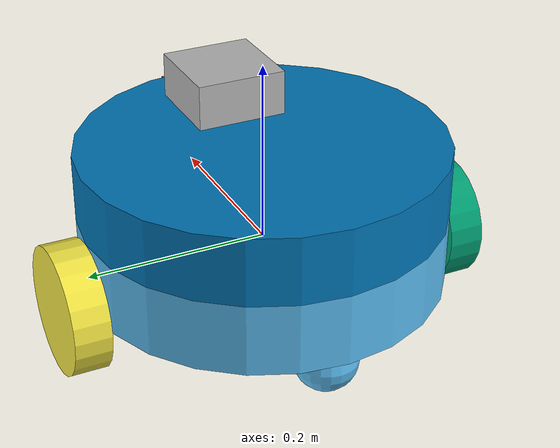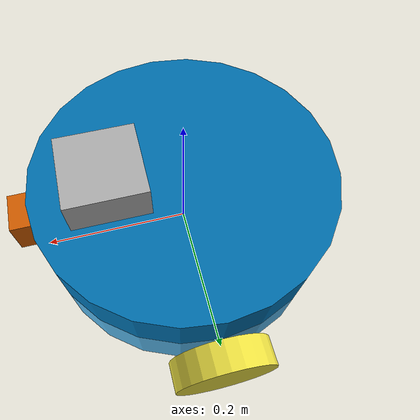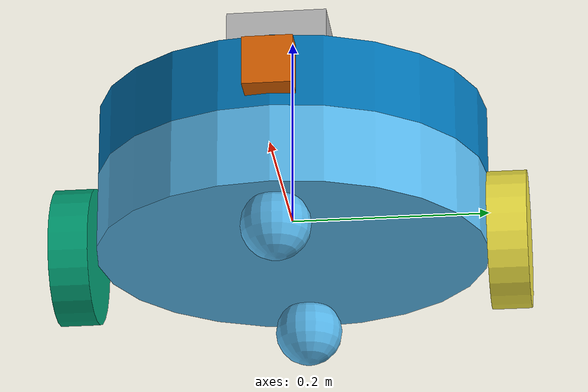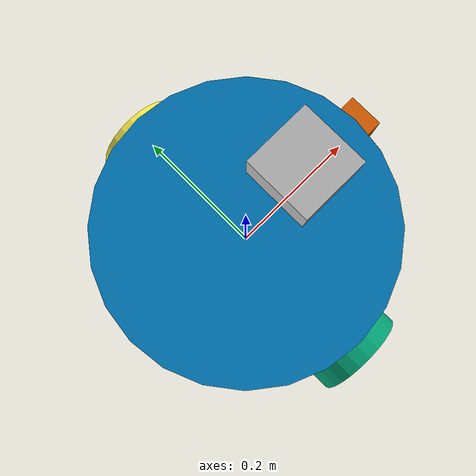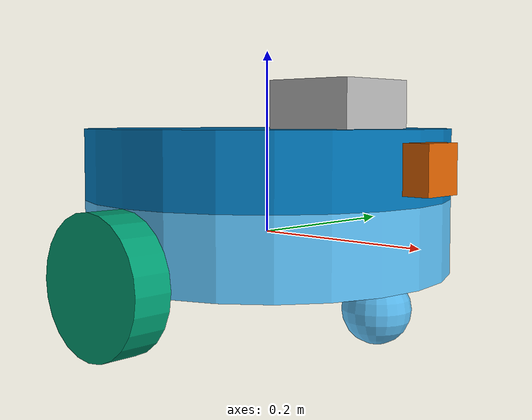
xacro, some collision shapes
<?xml version='1.0'?>

<robot name="my_robot" xmlns:xacro="http://www.ros.org/wiki/xacro">

	<xacro:include filename="$(find my_robot)/urdf/my_robot.gazebo" />

	<!-- parameters -->

    	<xacro:property name="base_radius" value="0.2" />
	<xacro:property name="base_height" value="0.08" />
	<xacro:property name="base_mass" value="10.0" />

	<xacro:property name="wheel_radius" value="0.07" />
	<xacro:property name="wheel_length" value="0.04" />
	<xacro:property name="wheel_mass" value="3.0" />
	<xacro:property name="z_offset_between_centers" value="${wheel_radius - base_height/2}" />

	<xacro:property name="camera_edge_length" value="0.05" />
	<xacro:property name="camera_mass" value="0.1" />

	<xacro:property name="lidar_edge_length" value="0.1" />
	<xacro:property name="lidar_mass" value="1e-5" />

	<xacro:property name="sensors_base_heigth" value="${1.5*camera_edge_length}" />
	<xacro:property name="sensors_base_mass" value="1.0" />
	<xacro:property name="sensors_base_offset_z" value="${base_height/2 + sensors_base_heigth/2}" />

	<xacro:property name="pi" value="3.1415926535897931" />

	<!-- macro definitions -->
	<xacro:macro name="cylinder_inertial" params="mass radius length">
		<inertial>
		    <mass value="${mass}" />
		    <inertia
			ixx="${1/12*mass*(3*radius*radius + length*length)}" ixy="0" ixz="0"
			iyy="${1/12*mass*(3*radius*radius + length*length)}" iyz="0"
			izz="${1/2*mass*radius*radius}"
		    />
		</inertial>
	</xacro:macro>

	<xacro:macro name="cube_inertial" params="mass edge_length">
		<inertial>
		    <mass value="${mass}" />
		    <inertia
			ixx="${1/6*mass*edge_length*edge_length}" ixy="0" ixz="0"
			iyy="${1/6*mass*edge_length*edge_length}" iyz="0"
			izz="${1/6*mass*edge_length*edge_length}"
		    />
		</inertial>
	</xacro:macro>

	<!-- robot -->

	<link name="robot_footprint"></link>

	<joint name="robot_footprint_joint" type="fixed">
		<origin xyz="0 0 0" rpy="0 0 0"/>
		<parent link="robot_footprint"/>
		<child link="base"/>
	</joint>

	<!-- Cylindrical base with two casters for stability along the y axis-->
	<link name="base">
		<pose>0 0 ${wheel_radius + z_offset_between_centers} 0 0 0</pose>

		<xacro:cylinder_inertial
		    mass="${base_mass}" radius="${base_radius}" length="${base_height}"
		/>

		<collision name="base_collision">
		    	<origin xyz="0 0 0" rpy="0 0 0"/>
			<geometry>
			<cylinder radius="${base_radius}" length="${base_height}" />
			</geometry>
		</collision>

		<visual name="base_visual">
			<origin xyz="0 0 0" rpy="0 0 0"/>
			<geometry>
				<cylinder radius="${base_radius}" length="${base_height}" />
			</geometry>
		</visual>

		<collision name="back_caster_collision">
			<origin
				xyz="${-3/4*base_radius} 0 ${-wheel_radius/2 - z_offset_between_centers}"
				rpy="0 0 0"
			/>
			<geometry>
				<sphere radius="${wheel_radius/2}"/>
			</geometry>
		</collision>

		<visual name="back_caster_visual">
			<origin
				xyz="${-3/4*base_radius} 0 ${-wheel_radius/2 - z_offset_between_centers}"
				rpy="0 0 0"
			/>
			<geometry>
				<sphere radius="${wheel_radius/2}"/>
			</geometry>
		</visual>

		<collision name="front_caster_collision">
			<origin
				xyz="${3/4*base_radius} 0 ${-wheel_radius/2 - z_offset_between_centers}"
				rpy="0 0 0"
			/>
			<geometry>
				<sphere radius="${wheel_radius/2}"/>
			</geometry>
		</collision>

		<visual name="front_caster_visual">
			<origin
				xyz="${3/4*base_radius} 0 ${-wheel_radius/2 - z_offset_between_centers}"
				rpy="0 0 0"
			/>
			<geometry>
				<sphere radius="${wheel_radius/2}"/>
			</geometry>
		</visual>

	</link>

   	<!-- wheels -->

	<link name="left_wheel">
		<xacro:cylinder_inertial
			mass="${wheel_mass}" radius="${wheel_radius}" length="${wheel_length}"
		/>

		<collision name="left_wheel_collision">
			<origin xyz="0 0 0" rpy="0 ${pi/2} ${pi/2}"/>
			<geometry>
				<cylinder radius="${wheel_radius}" length="${wheel_length}"/>
			</geometry>
		</collision>

		<visual name="left_wheel_visual">
			<origin xyz="0 0 0" rpy="0 ${pi/2} ${pi/2}"/>
			<geometry>
				<cylinder radius="${wheel_radius}" length="${wheel_length}"/>
			</geometry>
		</visual>
	</link>

	<joint type="continuous" name="left_wheel_hinge">
		<origin
			xyz="0 ${-1.0*(base_radius + wheel_length/2)} ${-z_offset_between_centers}"
			rpy="0 0 0"
		/>
		<child link="left_wheel"/>
		<parent link="base"/>
		<axis xyz="0 1 0" rpy="0 0 0"/>
		<limit effort="10000" velocity="1000"/>
		<dynamics damping="1.0" friction="1.0"/>
	</joint>

	<link name="right_wheel">
		<xacro:cylinder_inertial
			mass="${wheel_mass}" radius="${wheel_radius}" length="${wheel_length}"
		/>

		<collision name="right_wheel_collision">
			<origin xyz="0 0 0" rpy="0 ${pi/2} ${pi/2}"/>
			<geometry>
				<cylinder radius="${wheel_radius}" length="${wheel_length}"/>
			</geometry>
		</collision>

		<visual name="right_wheel_visual">
			<origin xyz="0 0 0" rpy="0 ${pi/2} ${pi/2}"/>
			<geometry>
				<cylinder radius="${wheel_radius}" length="${wheel_length}"/>
			</geometry>
		</visual>
	</link>

	<joint type="continuous" name="right_wheel_hinge">
		<origin
			xyz="0 ${(base_radius + wheel_length/2)} ${-z_offset_between_centers}"
			rpy="0 0 0"
		/>
		<child link="right_wheel"/>
		<parent link="base"/>
		<axis xyz="0 1 0" rpy="0 0 0"/>
		<limit effort="10000" velocity="1000"/>
		<dynamics damping="1.0" friction="1.0"/>
	</joint>

	<!-- Rotating base for the sensors -->
	<link name="sensors_base">
        	<xacro:cylinder_inertial
        	    mass="${sensors_base_mass}" radius="${base_radius}" length="${sensors_base_heigth}"
        	/>

        	<collision name="sensors_base_collision">
			<origin xyz="0 0 0" rpy="0 0 0"/>
			<geometry>
                		<cylinder radius="${base_radius}" length="${sensors_base_heigth}" />
			</geometry>
       		</collision>

        	<visual name="sensors_base_visual">
			<origin xyz="0 0 0" rpy="0 0 0"/>
            		<geometry>
                		<cylinder radius="${base_radius}" length="${sensors_base_heigth}" />
           		</geometry>
        	</visual>
    	</link>

    	<joint name="sensors_base_hinge" type="continuous">
        	<origin xyz="0 0 ${sensors_base_offset_z}" rpy="0 0 0" />
		<child link="sensors_base" />
		<parent link="base" />
		<axis xyz="0 0 1" rpy="0 0 0" />
		<limit effort="10000" velocity="1000" />
		<dynamics damping="1.0" friction="1.0" />
   	 </joint>

    	<!-- camera -->
    	<link name="camera">
        	<xacro:cube_inertial mass="${camera_mass}" edge_length="${camera_edge_length}" />
        	<collision name="camera_collision">
			<origin xyz="0 0 0" rpy="0 0 0" />
			<geometry>
				<box size="${camera_edge_length} ${camera_edge_length} ${camera_edge_length}" />
			</geometry>
	        </collision>

	        <visual name="camera_visual">
			<origin xyz="0 0 0" rpy="0 0 0" />
			<geometry>
				<box size="${camera_edge_length} ${camera_edge_length} ${camera_edge_length}" />
			</geometry>
	        </visual>
	</link>

	<joint name="camera_joint" type="fixed">
		<origin xyz="${base_radius} 0 0" rpy="0 0 0" />
		<parent link="sensors_base" />
		<child link="camera" />
		<axis xyz="0 1 0" rpy="0 0 0" />
	</joint>

	<joint name="camera_optical_joint" type="fixed">
            	<origin xyz="0 0 0" rpy="-1.5707 0 -1.5707"/>
	        <parent link="camera"/>
        	<child link="camera_link_optical"/>
        </joint>

        <link name="camera_link_optical">
        </link>

	<!-- lidar -->
	<link name="hokuyo">
        	<xacro:cube_inertial mass="${lidar_mass}" edge_length="${lidar_edge_length}" />

        	<collision name="lidar_collision">
			<origin xyz="0 0 0" rpy="0 0 0" />
			<geometry>
				<box size="${lidar_edge_length} ${lidar_edge_length} ${lidar_edge_length}" />
			</geometry>
        	</collision>

       		<visual name="lidar_visual">
			<origin xyz="0 0 0" rpy="0 0 0" />
			<geometry>
				<mesh filename="package://my_robot/meshes/hokuyo.dae" />
			</geometry>
        	</visual>
	</link>

	<joint name="hokuyo_joint" type="fixed">
		<origin
		    xyz="${base_radius - lidar_edge_length} 0 ${sensors_base_heigth/2}"
		    rpy="0 0 0"
		/>
		<parent link="sensors_base" />
		<child link="hokuyo" />
		<axis xyz="0 1 0" rpy="0 0 0" />
	</joint>

</robot>
